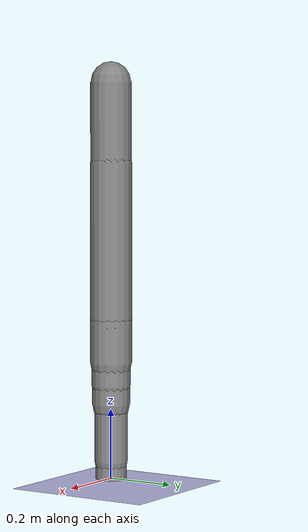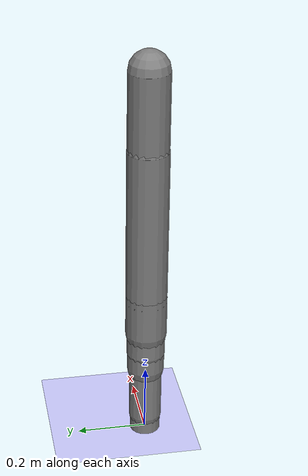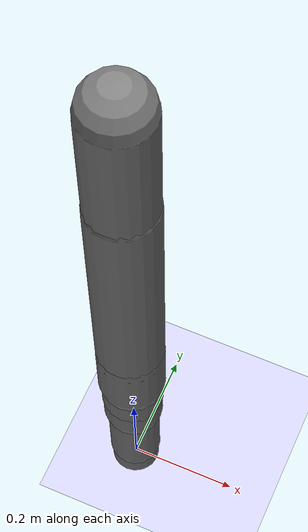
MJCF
<?xml version='1.0' encoding='UTF-8'?>
<mujoco model="robot_model">
  <worldbody>
    <light name="light" pos="0 -3 10" dir="0 0.5 -1" diffuse=".8 .8 .8" specular="0.1 0.1 0.1"/>
    <geom name="floor" type="plane" size="10.0 10.0 0.1" pos="0 0 0" rgba="0.8 0.8 1 1"/>
    <body name="limb0" pos="0 0 0">
      <geom type="capsule" fromto="0 0 0 0 0 0.28349479278887985" size="0.044566760784198925" density="668.1479865671638"/>
      <site type="sphere" size="0.01" name="limb0_site0" pos="0 0 0.2143046685493599"/>
      <site type="sphere" size="0.01" name="limb0_site1" pos="0 0 0.049279382912784046"/>
      <freejoint name="limb0_root"/>
      <body name="limb1" pos="0 0 0.2143046685493599">
        <geom type="capsule" fromto="0 0 0 0 0 0.3600789675341075" size="0.05407429494422454" density="619.3655655626594"/>
        <site type="sphere" size="0.01" name="limb1_site0" pos="0 0 0.11996587720560449"/>
        <body name="limb2" pos="0 0 0.11996587720560449">
          <geom type="capsule" fromto="0 0 0 0 0 0.12406041482013717" size="0.06" density="986.2150518331317"/>
          <site type="sphere" size="0.01" name="limb2_site0" pos="0 0 0.10649884769039768"/>
          <body name="limb3" pos="0 0 0.10649884769039768">
            <geom type="capsule" fromto="0 0 0 0 0 0.3246346816300574" size="0.027985800535247497" density="877.8764988614424"/>
            <site type="sphere" size="0.01" name="limb3_site0" pos="0 0 0.30592291138675143"/>
            <body name="limb4" pos="0 0 0.30592291138675143">
              <geom type="capsule" fromto="0 0 0 0 0 0.38664313349290746" size="0.05825338637690475" density="1129.6842087872121"/>
              <joint name="joint_limb3_limb4_0" type="hinge" axis="0 0 1" range="-32.23675465955068 32.23675465955068" damping="5.0"/>
            </body>
            <joint name="joint_limb2_limb3_0" type="hinge" axis="1 0 0" range="-102.98912811609488 102.98912811609488" damping="5.0"/>
          </body>
          <joint name="joint_limb1_limb2_0" type="hinge" axis="1 0 0" range="-39.88258003655788 39.88258003655788" damping="5.0"/>
        </body>
        <joint name="joint_limb0_limb1_0" type="hinge" axis="0 1 0" range="-118.27639451941653 118.27639451941653" damping="5.0"/>
      </body>
      <body name="limb5" pos="0 0 0.049279382912784046">
        <geom type="capsule" fromto="0 0 0 0 0 0.212372033619958" size="0.047573406144593294" density="643.9443932461887"/>
        <site type="sphere" size="0.01" name="limb5_site0" pos="0 0 0.03879371297448123"/>
        <site type="sphere" size="0.01" name="limb5_site1" pos="0 0 0.15594539539804847"/>
        <body name="limb6" pos="0 0 0.03879371297448123">
          <geom type="capsule" fromto="0 0 0 0 0 0.49506834786402915" size="0.03678532303791788" density="732.350866634508"/>
          <site type="sphere" size="0.01" name="limb6_site0" pos="0 0 0.48864896668293684"/>
          <site type="sphere" size="0.01" name="limb6_site1" pos="0 0 0.17997974781822323"/>
          <body name="limb7" pos="0 0 0.48864896668293684">
            <geom type="capsule" fromto="0 0 0 0 0 0.19835280866970714" size="0.04411414027217507" density="507.15314310444455"/>
            <site type="sphere" size="0.01" name="limb7_site0" pos="0 0 0.1502248823307766"/>
            <body name="limb8" pos="0 0 0.1502248823307766">
              <geom type="capsule" fromto="0 0 0 0 0 0.19891389615533042" size="0.030325208070064356" density="1018.0930803065299"/>
              <joint name="joint_limb7_limb8_0" type="hinge" axis="0 0 1" range="-104.59573439320407 104.59573439320407" damping="5.0"/>
            </body>
            <joint name="joint_limb6_limb7_0" type="hinge" axis="0 1 0" range="-101.73901430779064 101.73901430779064" damping="5.0"/>
          </body>
          <body name="limb9" pos="0 0 0.17997974781822323">
            <geom type="capsule" fromto="0 0 0 0 0 0.17894284299821797" size="0.05566483344233837" density="599.4961849034263"/>
            <joint name="joint_limb6_limb9_0" type="hinge" axis="1 0 0" range="-75.18819932201001 75.18819932201001" damping="5.0"/>
          </body>
          <joint name="joint_limb5_limb6_0" type="hinge" axis="0 0 1" range="-98.208106043741 98.208106043741" damping="5.0"/>
        </body>
        <body name="limb10" pos="0 0 0.15594539539804847">
          <geom type="capsule" fromto="0 0 0 0 0 0.2879295497092825" size="0.04990344700900342" density="660.7067265019084"/>
          <site type="sphere" size="0.01" name="limb10_site0" pos="0 0 0.23449394497914045"/>
          <body name="limb11" pos="0 0 0.23449394497914045">
            <geom type="capsule" fromto="0 0 0 0 0 0.4676759956951593" size="0.05966738873335552" density="631.8729198528299"/>
            <joint name="joint_limb10_limb11_0" type="hinge" axis="1 0 0" range="-120.0 120.0" damping="5.0"/>
          </body>
          <joint name="joint_limb5_limb10_0" type="hinge" axis="1 0 0" range="-60.447908144064876 60.447908144064876" damping="5.0"/>
        </body>
        <joint name="joint_limb0_limb5_0" type="hinge" axis="0 0 1" range="-96.21716630603876 96.21716630603876" damping="5.0"/>
      </body>
    </body>
  </worldbody>
  <actuator>
    <position name="position_actuator_joint_limb0_limb1_0" joint="joint_limb0_limb1_0" gear="1.143090706227208" inheritrange="1" kp="10.0"/>
    <position name="position_actuator_joint_limb1_limb2_0" joint="joint_limb1_limb2_0" gear="1.8942672705904835" inheritrange="1" kp="10.0"/>
    <position name="position_actuator_joint_limb2_limb3_0" joint="joint_limb2_limb3_0" gear="1.285844846340357" inheritrange="1" kp="10.0"/>
    <position name="position_actuator_joint_limb3_limb4_0" joint="joint_limb3_limb4_0" gear="0.6866428973515241" inheritrange="1" kp="10.0"/>
    <position name="position_actuator_joint_limb0_limb5_0" joint="joint_limb0_limb5_0" gear="1.7817465554683207" inheritrange="1" kp="10.0"/>
    <position name="position_actuator_joint_limb5_limb6_0" joint="joint_limb5_limb6_0" gear="0.9075785035297382" inheritrange="1" kp="10.0"/>
    <position name="position_actuator_joint_limb6_limb7_0" joint="joint_limb6_limb7_0" gear="0.6855578824392156" inheritrange="1" kp="10.0"/>
    <position name="position_actuator_joint_limb7_limb8_0" joint="joint_limb7_limb8_0" gear="0.7049780118299882" inheritrange="1" kp="10.0"/>
    <position name="position_actuator_joint_limb6_limb9_0" joint="joint_limb6_limb9_0" gear="0.7192497149736763" inheritrange="1" kp="10.0"/>
    <position name="position_actuator_joint_limb5_limb10_0" joint="joint_limb5_limb10_0" gear="0.6161122835041217" inheritrange="1" kp="10.0"/>
    <position name="position_actuator_joint_limb10_limb11_0" joint="joint_limb10_limb11_0" gear="1.3171299372511402" inheritrange="1" kp="10.0"/>
  </actuator>
</mujoco>
